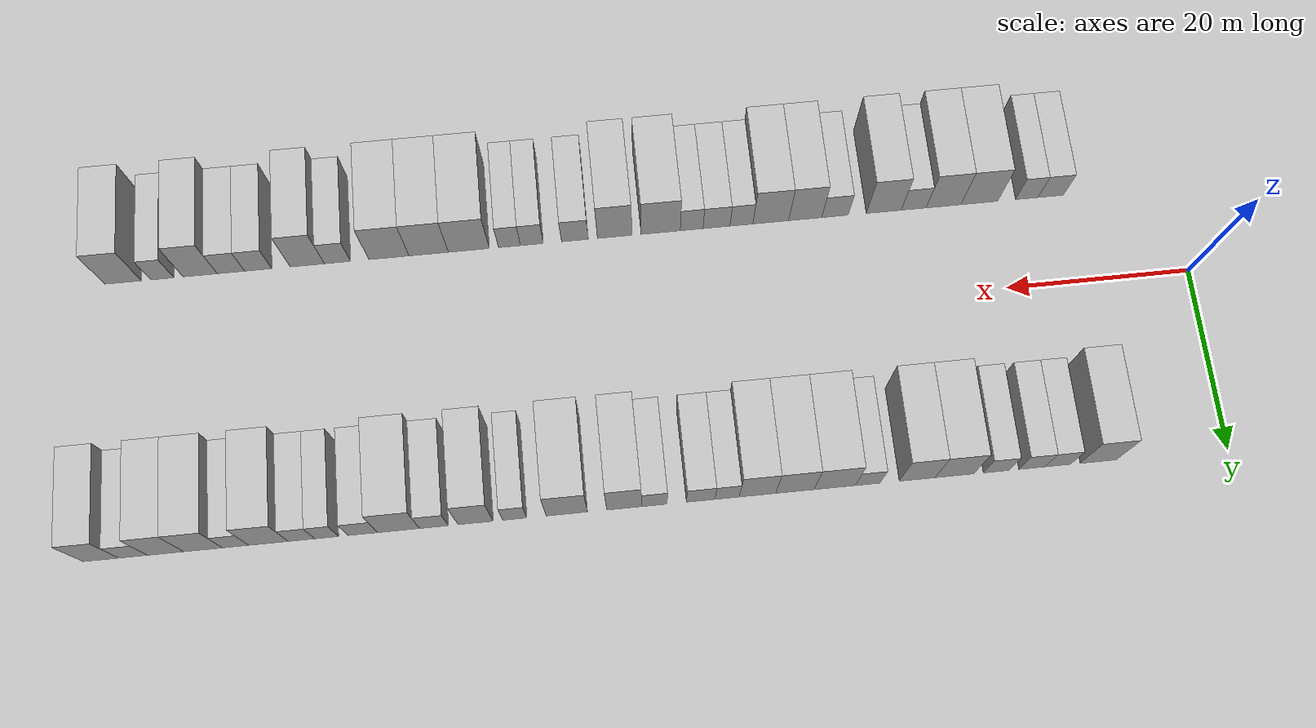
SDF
<sdf version="1.6">
 <world name="default">
  <include><name>ground_plane_1</name><uri>model://HANNAS_ground_plane</uri></include>
  <include>
   <name>ground_plane_2</name>
   <uri>model://HANNAS_ground_plane</uri>
   <pose>100 0 0  0 0 0</pose>
  </include>
  <model name="building_1">
   <static>1</static>
   <pose>13.9226 15.0000 0 0.000000 0.000000 1.570796</pose>
   <link name="link">
    <pose>0 0 4.50 0 0 0</pose>
    <collision name="collision"><geometry><box><size>10.0000 3.8453 9.0000</size></box></geometry></collision>
    <visual name="visual">
     <cast_shadows>0</cast_shadows>
     <geometry><box><size>10.0000 3.8453 9.0000</size></box></geometry>
     <material>
      <script>
       <uri>model://HANNAS_wall/materials/scripts</uri>
       <uri>model://HANNAS_wall/materials/textures</uri>
       <name>vrc/HANNAS_wall</name>
      </script>
     </material>
    </visual>
   </link>
  </model>
  <model name="building_2">
   <static>1</static>
   <pose>18.2007 15.0000 0 0.000000 0.000000 1.570796</pose>
   <link name="link">
    <pose>0 0 3.00 0 0 0</pose>
    <collision name="collision"><geometry><box><size>10.0000 2.7110 6.0000</size></box></geometry></collision>
    <visual name="visual">
     <cast_shadows>0</cast_shadows>
     <geometry><box><size>10.0000 2.7110 6.0000</size></box></geometry>
     <material>
      <script>
       <uri>model://HANNAS_wall/materials/scripts</uri>
       <uri>model://HANNAS_wall/materials/textures</uri>
       <name>vrc/HANNAS_wall</name>
      </script>
     </material>
    </visual>
   </link>
  </model>
  <model name="building_3">
   <static>1</static>
   <pose>20.9321 15.0000 0 0.000000 0.000000 1.570796</pose>
   <link name="link">
    <pose>0 0 3.00 0 0 0</pose>
    <collision name="collision"><geometry><box><size>10.0000 2.7518 6.0000</size></box></geometry></collision>
    <visual name="visual">
     <cast_shadows>0</cast_shadows>
     <geometry><box><size>10.0000 2.7518 6.0000</size></box></geometry>
     <material>
      <script>
       <uri>model://HANNAS_wall/materials/scripts</uri>
       <uri>model://HANNAS_wall/materials/textures</uri>
       <name>vrc/HANNAS_wall</name>
      </script>
     </material>
    </visual>
   </link>
  </model>
  <model name="building_4">
   <static>1</static>
   <pose>24.6770 15.0000 0 0.000000 0.000000 1.570796</pose>
   <link name="link">
    <pose>0 0 3.00 0 0 0</pose>
    <collision name="collision"><geometry><box><size>10.0000 2.7379 6.0000</size></box></geometry></collision>
    <visual name="visual">
     <cast_shadows>0</cast_shadows>
     <geometry><box><size>10.0000 2.7379 6.0000</size></box></geometry>
     <material>
      <script>
       <uri>model://HANNAS_wall/materials/scripts</uri>
       <uri>model://HANNAS_wall/materials/textures</uri>
       <name>vrc/HANNAS_wall</name>
      </script>
     </material>
    </visual>
   </link>
  </model>
  <model name="building_5">
   <static>1</static>
   <pose>29.0868 15.0000 0 0.000000 0.000000 1.570796</pose>
   <link name="link">
    <pose>0 0 4.50 0 0 0</pose>
    <collision name="collision"><geometry><box><size>10.0000 4.0817 9.0000</size></box></geometry></collision>
    <visual name="visual">
     <cast_shadows>0</cast_shadows>
     <geometry><box><size>10.0000 4.0817 9.0000</size></box></geometry>
     <material>
      <script>
       <uri>model://HANNAS_wall/materials/scripts</uri>
       <uri>model://HANNAS_wall/materials/textures</uri>
       <name>vrc/HANNAS_wall</name>
      </script>
     </material>
    </visual>
   </link>
  </model>
  <model name="building_6">
   <static>1</static>
   <pose>33.0017 15.0000 0 0.000000 0.000000 1.570796</pose>
   <link name="link">
    <pose>0 0 4.50 0 0 0</pose>
    <collision name="collision"><geometry><box><size>10.0000 3.7479 9.0000</size></box></geometry></collision>
    <visual name="visual">
     <cast_shadows>0</cast_shadows>
     <geometry><box><size>10.0000 3.7479 9.0000</size></box></geometry>
     <material>
      <script>
       <uri>model://HANNAS_wall/materials/scripts</uri>
       <uri>model://HANNAS_wall/materials/textures</uri>
       <name>vrc/HANNAS_wall</name>
      </script>
     </material>
    </visual>
   </link>
  </model>
  <model name="building_7">
   <static>1</static>
   <pose>38.1766 15.0000 0 0.000000 0.000000 1.570796</pose>
   <link name="link">
    <pose>0 0 3.00 0 0 0</pose>
    <collision name="collision"><geometry><box><size>10.0000 2.6020 6.0000</size></box></geometry></collision>
    <visual name="visual">
     <cast_shadows>0</cast_shadows>
     <geometry><box><size>10.0000 2.6020 6.0000</size></box></geometry>
     <material>
      <script>
       <uri>model://HANNAS_wall/materials/scripts</uri>
       <uri>model://HANNAS_wall/materials/textures</uri>
       <name>vrc/HANNAS_wall</name>
      </script>
     </material>
    </visual>
   </link>
  </model>
  <model name="building_8">
   <static>1</static>
   <pose>41.6271 15.0000 0 0.000000 0.000000 1.570796</pose>
   <link name="link">
    <pose>0 0 4.50 0 0 0</pose>
    <collision name="collision"><geometry><box><size>10.0000 4.2989 9.0000</size></box></geometry></collision>
    <visual name="visual">
     <cast_shadows>0</cast_shadows>
     <geometry><box><size>10.0000 4.2989 9.0000</size></box></geometry>
     <material>
      <script>
       <uri>model://HANNAS_wall/materials/scripts</uri>
       <uri>model://HANNAS_wall/materials/textures</uri>
       <name>vrc/HANNAS_wall</name>
      </script>
     </material>
    </visual>
   </link>
  </model>
  <model name="building_9">
   <static>1</static>
   <pose>45.7848 15.0000 0 0.000000 0.000000 1.570796</pose>
   <link name="link">
    <pose>0 0 4.50 0 0 0</pose>
    <collision name="collision"><geometry><box><size>10.0000 4.0166 9.0000</size></box></geometry></collision>
    <visual name="visual">
     <cast_shadows>0</cast_shadows>
     <geometry><box><size>10.0000 4.0166 9.0000</size></box></geometry>
     <material>
      <script>
       <uri>model://HANNAS_wall/materials/scripts</uri>
       <uri>model://HANNAS_wall/materials/textures</uri>
       <name>vrc/HANNAS_wall</name>
      </script>
     </material>
    </visual>
   </link>
  </model>
  <model name="building_10">
   <static>1</static>
   <pose>49.6950 15.0000 0 0.000000 0.000000 1.570796</pose>
   <link name="link">
    <pose>0 0 4.50 0 0 0</pose>
    <collision name="collision"><geometry><box><size>10.0000 3.8036 9.0000</size></box></geometry></collision>
    <visual name="visual">
     <cast_shadows>0</cast_shadows>
     <geometry><box><size>10.0000 3.8036 9.0000</size></box></geometry>
     <material>
      <script>
       <uri>model://HANNAS_wall/materials/scripts</uri>
       <uri>model://HANNAS_wall/materials/textures</uri>
       <name>vrc/HANNAS_wall</name>
      </script>
     </material>
    </visual>
   </link>
  </model>
  <model name="building_11">
   <static>1</static>
   <pose>52.8609 15.0000 0 0.000000 0.000000 1.570796</pose>
   <link name="link">
    <pose>0 0 3.00 0 0 0</pose>
    <collision name="collision"><geometry><box><size>10.0000 2.5283 6.0000</size></box></geometry></collision>
    <visual name="visual">
     <cast_shadows>0</cast_shadows>
     <geometry><box><size>10.0000 2.5283 6.0000</size></box></geometry>
     <material>
      <script>
       <uri>model://HANNAS_wall/materials/scripts</uri>
       <uri>model://HANNAS_wall/materials/textures</uri>
       <name>vrc/HANNAS_wall</name>
      </script>
     </material>
    </visual>
   </link>
  </model>
  <model name="building_12">
   <static>1</static>
   <pose>55.6068 15.0000 0 0.000000 0.000000 1.570796</pose>
   <link name="link">
    <pose>0 0 3.00 0 0 0</pose>
    <collision name="collision"><geometry><box><size>10.0000 2.9635 6.0000</size></box></geometry></collision>
    <visual name="visual">
     <cast_shadows>0</cast_shadows>
     <geometry><box><size>10.0000 2.9635 6.0000</size></box></geometry>
     <material>
      <script>
       <uri>model://HANNAS_wall/materials/scripts</uri>
       <uri>model://HANNAS_wall/materials/textures</uri>
       <name>vrc/HANNAS_wall</name>
      </script>
     </material>
    </visual>
   </link>
  </model>
  <model name="building_13">
   <static>1</static>
   <pose>60.4055 15.0000 0 0.000000 0.000000 1.570796</pose>
   <link name="link">
    <pose>0 0 3.00 0 0 0</pose>
    <collision name="collision"><geometry><box><size>10.0000 2.6340 6.0000</size></box></geometry></collision>
    <visual name="visual">
     <cast_shadows>0</cast_shadows>
     <geometry><box><size>10.0000 2.6340 6.0000</size></box></geometry>
     <material>
      <script>
       <uri>model://HANNAS_wall/materials/scripts</uri>
       <uri>model://HANNAS_wall/materials/textures</uri>
       <name>vrc/HANNAS_wall</name>
      </script>
     </material>
    </visual>
   </link>
  </model>
  <model name="building_14">
   <static>1</static>
   <pose>63.5333 15.0000 0 0.000000 0.000000 1.570796</pose>
   <link name="link">
    <pose>0 0 4.50 0 0 0</pose>
    <collision name="collision"><geometry><box><size>10.0000 3.6216 9.0000</size></box></geometry></collision>
    <visual name="visual">
     <cast_shadows>0</cast_shadows>
     <geometry><box><size>10.0000 3.6216 9.0000</size></box></geometry>
     <material>
      <script>
       <uri>model://HANNAS_wall/materials/scripts</uri>
       <uri>model://HANNAS_wall/materials/textures</uri>
       <name>vrc/HANNAS_wall</name>
      </script>
     </material>
    </visual>
   </link>
  </model>
  <model name="building_15">
   <static>1</static>
   <pose>69.4708 15.0000 0 0.000000 0.000000 1.570796</pose>
   <link name="link">
    <pose>0 0 4.50 0 0 0</pose>
    <collision name="collision"><geometry><box><size>10.0000 4.2534 9.0000</size></box></geometry></collision>
    <visual name="visual">
     <cast_shadows>0</cast_shadows>
     <geometry><box><size>10.0000 4.2534 9.0000</size></box></geometry>
     <material>
      <script>
       <uri>model://HANNAS_wall/materials/scripts</uri>
       <uri>model://HANNAS_wall/materials/textures</uri>
       <name>vrc/HANNAS_wall</name>
      </script>
     </material>
    </visual>
   </link>
  </model>
  <model name="building_16">
   <static>1</static>
   <pose>74.8315 15.0000 0 0.000000 0.000000 1.570796</pose>
   <link name="link">
    <pose>0 0 3.00 0 0 0</pose>
    <collision name="collision"><geometry><box><size>10.0000 2.4681 6.0000</size></box></geometry></collision>
    <visual name="visual">
     <cast_shadows>0</cast_shadows>
     <geometry><box><size>10.0000 2.4681 6.0000</size></box></geometry>
     <material>
      <script>
       <uri>model://HANNAS_wall/materials/scripts</uri>
       <uri>model://HANNAS_wall/materials/textures</uri>
       <name>vrc/HANNAS_wall</name>
      </script>
     </material>
    </visual>
   </link>
  </model>
  <model name="building_17">
   <static>1</static>
   <pose>78.8737 15.0000 0 0.000000 0.000000 1.570796</pose>
   <link name="link">
    <pose>0 0 4.50 0 0 0</pose>
    <collision name="collision"><geometry><box><size>10.0000 3.6162 9.0000</size></box></geometry></collision>
    <visual name="visual">
     <cast_shadows>0</cast_shadows>
     <geometry><box><size>10.0000 3.6162 9.0000</size></box></geometry>
     <material>
      <script>
       <uri>model://HANNAS_wall/materials/scripts</uri>
       <uri>model://HANNAS_wall/materials/textures</uri>
       <name>vrc/HANNAS_wall</name>
      </script>
     </material>
    </visual>
   </link>
  </model>
  <model name="building_18">
   <static>1</static>
   <pose>83.1581 15.0000 0 0.000000 0.000000 1.570796</pose>
   <link name="link">
    <pose>0 0 3.00 0 0 0</pose>
    <collision name="collision"><geometry><box><size>10.0000 2.9525 6.0000</size></box></geometry></collision>
    <visual name="visual">
     <cast_shadows>0</cast_shadows>
     <geometry><box><size>10.0000 2.9525 6.0000</size></box></geometry>
     <material>
      <script>
       <uri>model://HANNAS_wall/materials/scripts</uri>
       <uri>model://HANNAS_wall/materials/textures</uri>
       <name>vrc/HANNAS_wall</name>
      </script>
     </material>
    </visual>
   </link>
  </model>
  <model name="building_19">
   <static>1</static>
   <pose>86.7985 15.0000 0 0.000000 0.000000 1.570796</pose>
   <link name="link">
    <pose>0 0 4.50 0 0 0</pose>
    <collision name="collision"><geometry><box><size>10.0000 4.3284 9.0000</size></box></geometry></collision>
    <visual name="visual">
     <cast_shadows>0</cast_shadows>
     <geometry><box><size>10.0000 4.3284 9.0000</size></box></geometry>
     <material>
      <script>
       <uri>model://HANNAS_wall/materials/scripts</uri>
       <uri>model://HANNAS_wall/materials/textures</uri>
       <name>vrc/HANNAS_wall</name>
      </script>
     </material>
    </visual>
   </link>
  </model>
  <model name="building_20">
   <static>1</static>
   <pose>90.4593 15.0000 0 0.000000 0.000000 1.570796</pose>
   <link name="link">
    <pose>0 0 3.00 0 0 0</pose>
    <collision name="collision"><geometry><box><size>10.0000 2.9933 6.0000</size></box></geometry></collision>
    <visual name="visual">
     <cast_shadows>0</cast_shadows>
     <geometry><box><size>10.0000 2.9933 6.0000</size></box></geometry>
     <material>
      <script>
       <uri>model://HANNAS_wall/materials/scripts</uri>
       <uri>model://HANNAS_wall/materials/textures</uri>
       <name>vrc/HANNAS_wall</name>
      </script>
     </material>
    </visual>
   </link>
  </model>
  <model name="building_21">
   <static>1</static>
   <pose>94.1721 15.0000 0 0.000000 0.000000 1.570796</pose>
   <link name="link">
    <pose>0 0 3.00 0 0 0</pose>
    <collision name="collision"><geometry><box><size>10.0000 2.4321 6.0000</size></box></geometry></collision>
    <visual name="visual">
     <cast_shadows>0</cast_shadows>
     <geometry><box><size>10.0000 2.4321 6.0000</size></box></geometry>
     <material>
      <script>
       <uri>model://HANNAS_wall/materials/scripts</uri>
       <uri>model://HANNAS_wall/materials/textures</uri>
       <name>vrc/HANNAS_wall</name>
      </script>
     </material>
    </visual>
   </link>
  </model>
  <model name="building_22">
   <static>1</static>
   <pose>96.7443 15.0000 0 0.000000 0.000000 1.570796</pose>
   <link name="link">
    <pose>0 0 3.00 0 0 0</pose>
    <collision name="collision"><geometry><box><size>10.0000 2.7123 6.0000</size></box></geometry></collision>
    <visual name="visual">
     <cast_shadows>0</cast_shadows>
     <geometry><box><size>10.0000 2.7123 6.0000</size></box></geometry>
     <material>
      <script>
       <uri>model://HANNAS_wall/materials/scripts</uri>
       <uri>model://HANNAS_wall/materials/textures</uri>
       <name>vrc/HANNAS_wall</name>
      </script>
     </material>
    </visual>
   </link>
  </model>
  <model name="building_23">
   <static>1</static>
   <pose>100.1131 15.0000 0 0.000000 0.000000 1.570796</pose>
   <link name="link">
    <pose>0 0 4.50 0 0 0</pose>
    <collision name="collision"><geometry><box><size>10.0000 4.0254 9.0000</size></box></geometry></collision>
    <visual name="visual">
     <cast_shadows>0</cast_shadows>
     <geometry><box><size>10.0000 4.0254 9.0000</size></box></geometry>
     <material>
      <script>
       <uri>model://HANNAS_wall/materials/scripts</uri>
       <uri>model://HANNAS_wall/materials/textures</uri>
       <name>vrc/HANNAS_wall</name>
      </script>
     </material>
    </visual>
   </link>
  </model>
  <model name="building_24">
   <static>1</static>
   <pose>103.4632 15.0000 0 0.000000 0.000000 1.570796</pose>
   <link name="link">
    <pose>0 0 3.00 0 0 0</pose>
    <collision name="collision"><geometry><box><size>10.0000 2.6749 6.0000</size></box></geometry></collision>
    <visual name="visual">
     <cast_shadows>0</cast_shadows>
     <geometry><box><size>10.0000 2.6749 6.0000</size></box></geometry>
     <material>
      <script>
       <uri>model://HANNAS_wall/materials/scripts</uri>
       <uri>model://HANNAS_wall/materials/textures</uri>
       <name>vrc/HANNAS_wall</name>
      </script>
     </material>
    </visual>
   </link>
  </model>
  <model name="building_25">
   <static>1</static>
   <pose>106.7706 15.0000 0 0.000000 0.000000 1.570796</pose>
   <link name="link">
    <pose>0 0 4.50 0 0 0</pose>
    <collision name="collision"><geometry><box><size>10.0000 3.9398 9.0000</size></box></geometry></collision>
    <visual name="visual">
     <cast_shadows>0</cast_shadows>
     <geometry><box><size>10.0000 3.9398 9.0000</size></box></geometry>
     <material>
      <script>
       <uri>model://HANNAS_wall/materials/scripts</uri>
       <uri>model://HANNAS_wall/materials/textures</uri>
       <name>vrc/HANNAS_wall</name>
      </script>
     </material>
    </visual>
   </link>
  </model>
  <model name="building_26">
   <static>1</static>
   <pose>110.5769 15.0000 0 0.000000 0.000000 1.570796</pose>
   <link name="link">
    <pose>0 0 4.50 0 0 0</pose>
    <collision name="collision"><geometry><box><size>10.0000 3.6727 9.0000</size></box></geometry></collision>
    <visual name="visual">
     <cast_shadows>0</cast_shadows>
     <geometry><box><size>10.0000 3.6727 9.0000</size></box></geometry>
     <material>
      <script>
       <uri>model://HANNAS_wall/materials/scripts</uri>
       <uri>model://HANNAS_wall/materials/textures</uri>
       <name>vrc/HANNAS_wall</name>
      </script>
     </material>
    </visual>
   </link>
  </model>
  <model name="building_27">
   <static>1</static>
   <pose>113.8792 15.0000 0 0.000000 0.000000 1.570796</pose>
   <link name="link">
    <pose>0 0 3.00 0 0 0</pose>
    <collision name="collision"><geometry><box><size>10.0000 2.9318 6.0000</size></box></geometry></collision>
    <visual name="visual">
     <cast_shadows>0</cast_shadows>
     <geometry><box><size>10.0000 2.9318 6.0000</size></box></geometry>
     <material>
      <script>
       <uri>model://HANNAS_wall/materials/scripts</uri>
       <uri>model://HANNAS_wall/materials/textures</uri>
       <name>vrc/HANNAS_wall</name>
      </script>
     </material>
    </visual>
   </link>
  </model>
  <model name="building_28">
   <static>1</static>
   <pose>117.1531 15.0000 0 0.000000 0.000000 1.570796</pose>
   <link name="link">
    <pose>0 0 4.50 0 0 0</pose>
    <collision name="collision"><geometry><box><size>10.0000 3.6159 9.0000</size></box></geometry></collision>
    <visual name="visual">
     <cast_shadows>0</cast_shadows>
     <geometry><box><size>10.0000 3.6159 9.0000</size></box></geometry>
     <material>
      <script>
       <uri>model://HANNAS_wall/materials/scripts</uri>
       <uri>model://HANNAS_wall/materials/textures</uri>
       <name>vrc/HANNAS_wall</name>
      </script>
     </material>
    </visual>
   </link>
  </model>
  <model name="building_57">
   <static>1</static>
   <pose>13.4262 -15.0000 0 0.000000 0.000000 1.570796</pose>
   <link name="link">
    <pose>0 0 3.00 0 0 0</pose>
    <collision name="collision"><geometry><box><size>10.0000 2.8524 6.0000</size></box></geometry></collision>
    <visual name="visual">
     <cast_shadows>0</cast_shadows>
     <geometry><box><size>10.0000 2.8524 6.0000</size></box></geometry>
     <material>
      <script>
       <uri>model://HANNAS_wall/materials/scripts</uri>
       <uri>model://HANNAS_wall/materials/textures</uri>
       <name>vrc/HANNAS_wall</name>
      </script>
     </material>
    </visual>
   </link>
  </model>
  <model name="building_58">
   <static>1</static>
   <pose>16.1058 -15.0000 0 0.000000 0.000000 1.570796</pose>
   <link name="link">
    <pose>0 0 3.00 0 0 0</pose>
    <collision name="collision"><geometry><box><size>10.0000 2.5069 6.0000</size></box></geometry></collision>
    <visual name="visual">
     <cast_shadows>0</cast_shadows>
     <geometry><box><size>10.0000 2.5069 6.0000</size></box></geometry>
     <material>
      <script>
       <uri>model://HANNAS_wall/materials/scripts</uri>
       <uri>model://HANNAS_wall/materials/textures</uri>
       <name>vrc/HANNAS_wall</name>
      </script>
     </material>
    </visual>
   </link>
  </model>
  <model name="building_59">
   <static>1</static>
   <pose>21.4099 -15.0000 0 0.000000 0.000000 1.570796</pose>
   <link name="link">
    <pose>0 0 4.50 0 0 0</pose>
    <collision name="collision"><geometry><box><size>10.0000 4.1012 9.0000</size></box></geometry></collision>
    <visual name="visual">
     <cast_shadows>0</cast_shadows>
     <geometry><box><size>10.0000 4.1012 9.0000</size></box></geometry>
     <material>
      <script>
       <uri>model://HANNAS_wall/materials/scripts</uri>
       <uri>model://HANNAS_wall/materials/textures</uri>
       <name>vrc/HANNAS_wall</name>
      </script>
     </material>
    </visual>
   </link>
  </model>
  <model name="building_60">
   <static>1</static>
   <pose>25.4114 -15.0000 0 0.000000 0.000000 1.570796</pose>
   <link name="link">
    <pose>0 0 4.50 0 0 0</pose>
    <collision name="collision"><geometry><box><size>10.0000 3.9020 9.0000</size></box></geometry></collision>
    <visual name="visual">
     <cast_shadows>0</cast_shadows>
     <geometry><box><size>10.0000 3.9020 9.0000</size></box></geometry>
     <material>
      <script>
       <uri>model://HANNAS_wall/materials/scripts</uri>
       <uri>model://HANNAS_wall/materials/textures</uri>
       <name>vrc/HANNAS_wall</name>
      </script>
     </material>
    </visual>
   </link>
  </model>
  <model name="building_61">
   <static>1</static>
   <pose>28.7406 -15.0000 0 0.000000 0.000000 1.570796</pose>
   <link name="link">
    <pose>0 0 3.00 0 0 0</pose>
    <collision name="collision"><geometry><box><size>10.0000 2.7563 6.0000</size></box></geometry></collision>
    <visual name="visual">
     <cast_shadows>0</cast_shadows>
     <geometry><box><size>10.0000 2.7563 6.0000</size></box></geometry>
     <material>
      <script>
       <uri>model://HANNAS_wall/materials/scripts</uri>
       <uri>model://HANNAS_wall/materials/textures</uri>
       <name>vrc/HANNAS_wall</name>
      </script>
     </material>
    </visual>
   </link>
  </model>
  <model name="building_62">
   <static>1</static>
   <pose>32.0567 -15.0000 0 0.000000 0.000000 1.570796</pose>
   <link name="link">
    <pose>0 0 4.50 0 0 0</pose>
    <collision name="collision"><geometry><box><size>10.0000 3.8760 9.0000</size></box></geometry></collision>
    <visual name="visual">
     <cast_shadows>0</cast_shadows>
     <geometry><box><size>10.0000 3.8760 9.0000</size></box></geometry>
     <material>
      <script>
       <uri>model://HANNAS_wall/materials/scripts</uri>
       <uri>model://HANNAS_wall/materials/textures</uri>
       <name>vrc/HANNAS_wall</name>
      </script>
     </material>
    </visual>
   </link>
  </model>
  <model name="building_63">
   <static>1</static>
   <pose>37.4647 -15.0000 0 0.000000 0.000000 1.570796</pose>
   <link name="link">
    <pose>0 0 3.00 0 0 0</pose>
    <collision name="collision"><geometry><box><size>10.0000 2.9399 6.0000</size></box></geometry></collision>
    <visual name="visual">
     <cast_shadows>0</cast_shadows>
     <geometry><box><size>10.0000 2.9399 6.0000</size></box></geometry>
     <material>
      <script>
       <uri>model://HANNAS_wall/materials/scripts</uri>
       <uri>model://HANNAS_wall/materials/textures</uri>
       <name>vrc/HANNAS_wall</name>
      </script>
     </material>
    </visual>
   </link>
  </model>
  <model name="building_64">
   <static>1</static>
   <pose>40.7712 -15.0000 0 0.000000 0.000000 1.570796</pose>
   <link name="link">
    <pose>0 0 4.50 0 0 0</pose>
    <collision name="collision"><geometry><box><size>10.0000 3.6730 9.0000</size></box></geometry></collision>
    <visual name="visual">
     <cast_shadows>0</cast_shadows>
     <geometry><box><size>10.0000 3.6730 9.0000</size></box></geometry>
     <material>
      <script>
       <uri>model://HANNAS_wall/materials/scripts</uri>
       <uri>model://HANNAS_wall/materials/textures</uri>
       <name>vrc/HANNAS_wall</name>
      </script>
     </material>
    </visual>
   </link>
  </model>
  <model name="building_65">
   <static>1</static>
   <pose>44.5831 -15.0000 0 0.000000 0.000000 1.570796</pose>
   <link name="link">
    <pose>0 0 4.50 0 0 0</pose>
    <collision name="collision"><geometry><box><size>10.0000 3.9509 9.0000</size></box></geometry></collision>
    <visual name="visual">
     <cast_shadows>0</cast_shadows>
     <geometry><box><size>10.0000 3.9509 9.0000</size></box></geometry>
     <material>
      <script>
       <uri>model://HANNAS_wall/materials/scripts</uri>
       <uri>model://HANNAS_wall/materials/textures</uri>
       <name>vrc/HANNAS_wall</name>
      </script>
     </material>
    </visual>
   </link>
  </model>
  <model name="building_66">
   <static>1</static>
   <pose>47.8256 -15.0000 0 0.000000 0.000000 1.570796</pose>
   <link name="link">
    <pose>0 0 3.00 0 0 0</pose>
    <collision name="collision"><geometry><box><size>10.0000 2.5341 6.0000</size></box></geometry></collision>
    <visual name="visual">
     <cast_shadows>0</cast_shadows>
     <geometry><box><size>10.0000 2.5341 6.0000</size></box></geometry>
     <material>
      <script>
       <uri>model://HANNAS_wall/materials/scripts</uri>
       <uri>model://HANNAS_wall/materials/textures</uri>
       <name>vrc/HANNAS_wall</name>
      </script>
     </material>
    </visual>
   </link>
  </model>
  <model name="building_67">
   <static>1</static>
   <pose>50.5772 -15.0000 0 0.000000 0.000000 1.570796</pose>
   <link name="link">
    <pose>0 0 3.00 0 0 0</pose>
    <collision name="collision"><geometry><box><size>10.0000 2.9689 6.0000</size></box></geometry></collision>
    <visual name="visual">
     <cast_shadows>0</cast_shadows>
     <geometry><box><size>10.0000 2.9689 6.0000</size></box></geometry>
     <material>
      <script>
       <uri>model://HANNAS_wall/materials/scripts</uri>
       <uri>model://HANNAS_wall/materials/textures</uri>
       <name>vrc/HANNAS_wall</name>
      </script>
     </material>
    </visual>
   </link>
  </model>
  <model name="building_68">
   <static>1</static>
   <pose>53.3177 -15.0000 0 0.000000 0.000000 1.570796</pose>
   <link name="link">
    <pose>0 0 3.00 0 0 0</pose>
    <collision name="collision"><geometry><box><size>10.0000 2.5122 6.0000</size></box></geometry></collision>
    <visual name="visual">
     <cast_shadows>0</cast_shadows>
     <geometry><box><size>10.0000 2.5122 6.0000</size></box></geometry>
     <material>
      <script>
       <uri>model://HANNAS_wall/materials/scripts</uri>
       <uri>model://HANNAS_wall/materials/textures</uri>
       <name>vrc/HANNAS_wall</name>
      </script>
     </material>
    </visual>
   </link>
  </model>
  <model name="building_69">
   <static>1</static>
   <pose>56.7246 -15.0000 0 0.000000 0.000000 1.570796</pose>
   <link name="link">
    <pose>0 0 4.50 0 0 0</pose>
    <collision name="collision"><geometry><box><size>10.0000 4.3016 9.0000</size></box></geometry></collision>
    <visual name="visual">
     <cast_shadows>0</cast_shadows>
     <geometry><box><size>10.0000 4.3016 9.0000</size></box></geometry>
     <material>
      <script>
       <uri>model://HANNAS_wall/materials/scripts</uri>
       <uri>model://HANNAS_wall/materials/textures</uri>
       <name>vrc/HANNAS_wall</name>
      </script>
     </material>
    </visual>
   </link>
  </model>
  <model name="building_70">
   <static>1</static>
   <pose>61.7794 -15.0000 0 0.000000 0.000000 1.570796</pose>
   <link name="link">
    <pose>0 0 4.50 0 0 0</pose>
    <collision name="collision"><geometry><box><size>10.0000 3.8079 9.0000</size></box></geometry></collision>
    <visual name="visual">
     <cast_shadows>0</cast_shadows>
     <geometry><box><size>10.0000 3.8079 9.0000</size></box></geometry>
     <material>
      <script>
       <uri>model://HANNAS_wall/materials/scripts</uri>
       <uri>model://HANNAS_wall/materials/textures</uri>
       <name>vrc/HANNAS_wall</name>
      </script>
     </material>
    </visual>
   </link>
  </model>
  <model name="building_71">
   <static>1</static>
   <pose>66.1522 -15.0000 0 0.000000 0.000000 1.570796</pose>
   <link name="link">
    <pose>0 0 3.00 0 0 0</pose>
    <collision name="collision"><geometry><box><size>10.0000 2.9377 6.0000</size></box></geometry></collision>
    <visual name="visual">
     <cast_shadows>0</cast_shadows>
     <geometry><box><size>10.0000 2.9377 6.0000</size></box></geometry>
     <material>
      <script>
       <uri>model://HANNAS_wall/materials/scripts</uri>
       <uri>model://HANNAS_wall/materials/textures</uri>
       <name>vrc/HANNAS_wall</name>
      </script>
     </material>
    </visual>
   </link>
  </model>
  <model name="building_72">
   <static>1</static>
   <pose>70.8683 -15.0000 0 0.000000 0.000000 1.570796</pose>
   <link name="link">
    <pose>0 0 3.00 0 0 0</pose>
    <collision name="collision"><geometry><box><size>10.0000 2.4945 6.0000</size></box></geometry></collision>
    <visual name="visual">
     <cast_shadows>0</cast_shadows>
     <geometry><box><size>10.0000 2.4945 6.0000</size></box></geometry>
     <material>
      <script>
       <uri>model://HANNAS_wall/materials/scripts</uri>
       <uri>model://HANNAS_wall/materials/textures</uri>
       <name>vrc/HANNAS_wall</name>
      </script>
     </material>
    </visual>
   </link>
  </model>
  <model name="building_73">
   <static>1</static>
   <pose>73.3175 -15.0000 0 0.000000 0.000000 1.570796</pose>
   <link name="link">
    <pose>0 0 3.00 0 0 0</pose>
    <collision name="collision"><geometry><box><size>10.0000 2.4040 6.0000</size></box></geometry></collision>
    <visual name="visual">
     <cast_shadows>0</cast_shadows>
     <geometry><box><size>10.0000 2.4040 6.0000</size></box></geometry>
     <material>
      <script>
       <uri>model://HANNAS_wall/materials/scripts</uri>
       <uri>model://HANNAS_wall/materials/textures</uri>
       <name>vrc/HANNAS_wall</name>
      </script>
     </material>
    </visual>
   </link>
  </model>
  <model name="building_74">
   <static>1</static>
   <pose>77.7529 -15.0000 0 0.000000 0.000000 1.570796</pose>
   <link name="link">
    <pose>0 0 4.50 0 0 0</pose>
    <collision name="collision"><geometry><box><size>10.0000 4.4667 9.0000</size></box></geometry></collision>
    <visual name="visual">
     <cast_shadows>0</cast_shadows>
     <geometry><box><size>10.0000 4.4667 9.0000</size></box></geometry>
     <material>
      <script>
       <uri>model://HANNAS_wall/materials/scripts</uri>
       <uri>model://HANNAS_wall/materials/textures</uri>
       <name>vrc/HANNAS_wall</name>
      </script>
     </material>
    </visual>
   </link>
  </model>
  <model name="building_75">
   <static>1</static>
   <pose>82.1399 -15.0000 0 0.000000 0.000000 1.570796</pose>
   <link name="link">
    <pose>0 0 4.50 0 0 0</pose>
    <collision name="collision"><geometry><box><size>10.0000 4.3073 9.0000</size></box></geometry></collision>
    <visual name="visual">
     <cast_shadows>0</cast_shadows>
     <geometry><box><size>10.0000 4.3073 9.0000</size></box></geometry>
     <material>
      <script>
       <uri>model://HANNAS_wall/materials/scripts</uri>
       <uri>model://HANNAS_wall/materials/textures</uri>
       <name>vrc/HANNAS_wall</name>
      </script>
     </material>
    </visual>
   </link>
  </model>
  <model name="building_76">
   <static>1</static>
   <pose>86.4755 -15.0000 0 0.000000 0.000000 1.570796</pose>
   <link name="link">
    <pose>0 0 4.50 0 0 0</pose>
    <collision name="collision"><geometry><box><size>10.0000 4.3640 9.0000</size></box></geometry></collision>
    <visual name="visual">
     <cast_shadows>0</cast_shadows>
     <geometry><box><size>10.0000 4.3640 9.0000</size></box></geometry>
     <material>
      <script>
       <uri>model://HANNAS_wall/materials/scripts</uri>
       <uri>model://HANNAS_wall/materials/textures</uri>
       <name>vrc/HANNAS_wall</name>
      </script>
     </material>
    </visual>
   </link>
  </model>
  <model name="building_77">
   <static>1</static>
   <pose>92.0766 -15.0000 0 0.000000 0.000000 1.570796</pose>
   <link name="link">
    <pose>0 0 3.00 0 0 0</pose>
    <collision name="collision"><geometry><box><size>10.0000 2.8382 6.0000</size></box></geometry></collision>
    <visual name="visual">
     <cast_shadows>0</cast_shadows>
     <geometry><box><size>10.0000 2.8382 6.0000</size></box></geometry>
     <material>
      <script>
       <uri>model://HANNAS_wall/materials/scripts</uri>
       <uri>model://HANNAS_wall/materials/textures</uri>
       <name>vrc/HANNAS_wall</name>
      </script>
     </material>
    </visual>
   </link>
  </model>
  <model name="building_78">
   <static>1</static>
   <pose>95.3479 -15.0000 0 0.000000 0.000000 1.570796</pose>
   <link name="link">
    <pose>0 0 4.50 0 0 0</pose>
    <collision name="collision"><geometry><box><size>10.0000 3.7043 9.0000</size></box></geometry></collision>
    <visual name="visual">
     <cast_shadows>0</cast_shadows>
     <geometry><box><size>10.0000 3.7043 9.0000</size></box></geometry>
     <material>
      <script>
       <uri>model://HANNAS_wall/materials/scripts</uri>
       <uri>model://HANNAS_wall/materials/textures</uri>
       <name>vrc/HANNAS_wall</name>
      </script>
     </material>
    </visual>
   </link>
  </model>
  <model name="building_79">
   <static>1</static>
   <pose>100.6628 -15.0000 0 0.000000 0.000000 1.570796</pose>
   <link name="link">
    <pose>0 0 3.00 0 0 0</pose>
    <collision name="collision"><geometry><box><size>10.0000 2.9256 6.0000</size></box></geometry></collision>
    <visual name="visual">
     <cast_shadows>0</cast_shadows>
     <geometry><box><size>10.0000 2.9256 6.0000</size></box></geometry>
     <material>
      <script>
       <uri>model://HANNAS_wall/materials/scripts</uri>
       <uri>model://HANNAS_wall/materials/textures</uri>
       <name>vrc/HANNAS_wall</name>
      </script>
     </material>
    </visual>
   </link>
  </model>
  <model name="building_80">
   <static>1</static>
   <pose>103.6089 -15.0000 0 0.000000 0.000000 1.570796</pose>
   <link name="link">
    <pose>0 0 3.00 0 0 0</pose>
    <collision name="collision"><geometry><box><size>10.0000 2.9667 6.0000</size></box></geometry></collision>
    <visual name="visual">
     <cast_shadows>0</cast_shadows>
     <geometry><box><size>10.0000 2.9667 6.0000</size></box></geometry>
     <material>
      <script>
       <uri>model://HANNAS_wall/materials/scripts</uri>
       <uri>model://HANNAS_wall/materials/textures</uri>
       <name>vrc/HANNAS_wall</name>
      </script>
     </material>
    </visual>
   </link>
  </model>
  <model name="building_81">
   <static>1</static>
   <pose>106.9438 -15.0000 0 0.000000 0.000000 1.570796</pose>
   <link name="link">
    <pose>0 0 4.50 0 0 0</pose>
    <collision name="collision"><geometry><box><size>10.0000 3.7031 9.0000</size></box></geometry></collision>
    <visual name="visual">
     <cast_shadows>0</cast_shadows>
     <geometry><box><size>10.0000 3.7031 9.0000</size></box></geometry>
     <material>
      <script>
       <uri>model://HANNAS_wall/materials/scripts</uri>
       <uri>model://HANNAS_wall/materials/textures</uri>
       <name>vrc/HANNAS_wall</name>
      </script>
     </material>
    </visual>
   </link>
  </model>
  <model name="building_82">
   <static>1</static>
   <pose>111.0401 -15.0000 0 0.000000 0.000000 1.570796</pose>
   <link name="link">
    <pose>0 0 3.00 0 0 0</pose>
    <collision name="collision"><geometry><box><size>10.0000 2.4894 6.0000</size></box></geometry></collision>
    <visual name="visual">
     <cast_shadows>0</cast_shadows>
     <geometry><box><size>10.0000 2.4894 6.0000</size></box></geometry>
     <material>
      <script>
       <uri>model://HANNAS_wall/materials/scripts</uri>
       <uri>model://HANNAS_wall/materials/textures</uri>
       <name>vrc/HANNAS_wall</name>
      </script>
     </material>
    </visual>
   </link>
  </model>
  <model name="building_83">
   <static>1</static>
   <pose>115.2498 -15.0000 0 0.000000 0.000000 1.570796</pose>
   <link name="link">
    <pose>0 0 4.50 0 0 0</pose>
    <collision name="collision"><geometry><box><size>10.0000 3.9300 9.0000</size></box></geometry></collision>
    <visual name="visual">
     <cast_shadows>0</cast_shadows>
     <geometry><box><size>10.0000 3.9300 9.0000</size></box></geometry>
     <material>
      <script>
       <uri>model://HANNAS_wall/materials/scripts</uri>
       <uri>model://HANNAS_wall/materials/textures</uri>
       <name>vrc/HANNAS_wall</name>
      </script>
     </material>
    </visual>
   </link>
  </model>
 </world>
</sdf>
